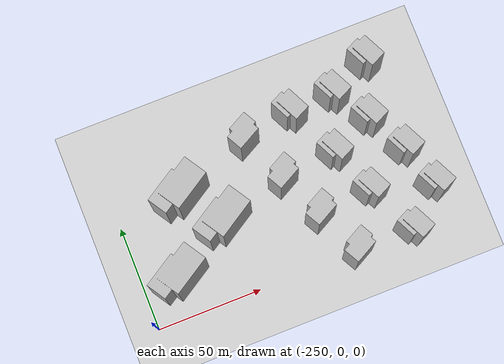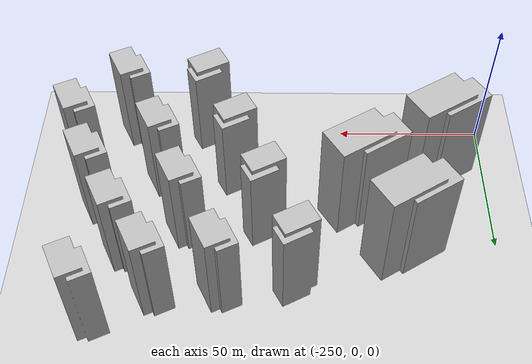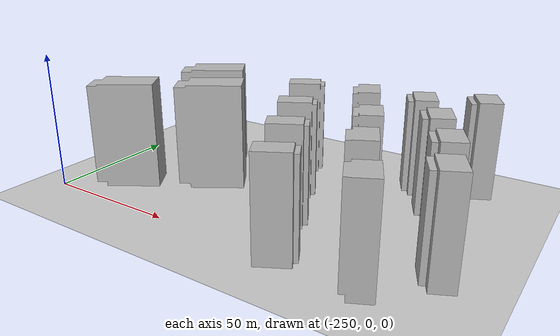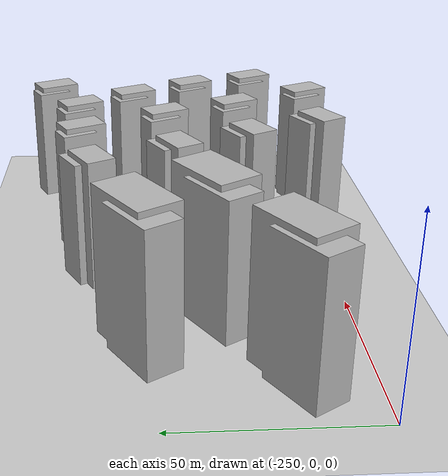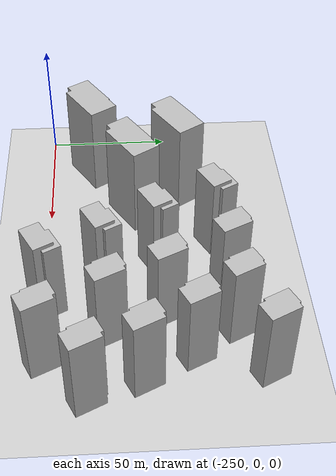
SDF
<sdf version="1.7">
 <world name="default">
  <model name="ground_plane">
   <static>1</static>
   <link name="link">
    <collision name="collision">
     <geometry><plane><normal>0 0 1</normal><size>100 100</size></plane></geometry>
     <surface><friction><ode><mu>100</mu><mu2>50</mu2></ode></friction></surface>
    </collision>
    <visual name="visual">
     <cast_shadows>0</cast_shadows>
     <geometry><plane><normal>0 0 1</normal><size>100 100</size></plane></geometry>
     <material>
      <script><uri>file://media/materials/scripts/gazebo.material</uri><name>Gazebo/Grey</name></script>
     </material>
    </visual>
   </link>
  </model>
  <model name="apartment1_1_clone_clone_1">
   <static>1</static>
   <link name="link_0">
    <inertial>
     <mass>1</mass>
     <inertia>
      <ixx>0.166667</ixx>
      <ixy>0</ixy>
      <ixz>0</ixz>
      <iyy>0.166667</iyy>
      <iyz>0</iyz>
      <izz>0.166667</izz>
     </inertia>
    </inertial>
    <pose>1e-06 -0 0 0 -0 0</pose>
    <visual name="visual">
     <geometry>
      <mesh><uri>model://apartment1/scripts/apartment1.dae</uri><scale>0.2 0.2 0.3</scale></mesh>
     </geometry>
     <material>
      <lighting>1</lighting>
      <script><uri>model://apartment1/scripts/apartment1.jpg</uri><name>__default__</name></script>
      <shader type="pixel"/>
     </material>
    </visual>
    <collision name="collision">
     <geometry>
      <mesh><uri>model://apartment1/scripts/apartment1.dae</uri><scale>0.2 0.2 0.3</scale></mesh>
     </geometry>
     <surface>
      <friction>
       <ode><mu>1</mu><mu2>1</mu2><fdir1>0 0 0</fdir1><slip1>0</slip1><slip2>0</slip2></ode>
       <torsional>
        <coefficient>1</coefficient>
        <patch_radius>0</patch_radius>
        <surface_radius>0</surface_radius>
        <use_patch_radius>1</use_patch_radius>
        <ode><slip>0</slip></ode>
       </torsional>
      </friction>
      <bounce><restitution_coefficient>0</restitution_coefficient><threshold>1e+06</threshold></bounce>
      <contact>
       <collide_without_contact>0</collide_without_contact>
       <collide_without_contact_bitmask>1</collide_without_contact_bitmask>
       <collide_bitmask>1</collide_bitmask>
       <ode>
        <soft_cfm>0</soft_cfm>
        <soft_erp>0.2</soft_erp>
        <kp>1e+13</kp>
        <kd>1</kd>
        <max_vel>0.01</max_vel>
        <min_depth>0</min_depth>
       </ode>
       <bullet>
        <split_impulse>1</split_impulse>
        <split_impulse_penetration_threshold>-0.01</split_impulse_penetration_threshold>
        <soft_cfm>0</soft_cfm>
        <soft_erp>0.2</soft_erp>
        <kp>1e+13</kp>
        <kd>1</kd>
       </bullet>
      </contact>
     </surface>
    </collision>
   </link>
   <static>0</static>
   <pose>-116.398 79.7343 0 0 -0 0.45325</pose>
  </model>
  <model name="apartment1_1_clone_clone_2_clone_0">
   <static>1</static>
   <link name="link_0">
    <inertial>
     <mass>1</mass>
     <inertia>
      <ixx>0.166667</ixx>
      <ixy>0</ixy>
      <ixz>0</ixz>
      <iyy>0.166667</iyy>
      <iyz>0</iyz>
      <izz>0.166667</izz>
     </inertia>
    </inertial>
    <pose>1e-06 -0 0 0 -0 0</pose>
    <visual name="visual">
     <geometry>
      <mesh><uri>model://apartment1/scripts/apartment1.dae</uri><scale>0.2 0.2 0.3</scale></mesh>
     </geometry>
     <material>
      <lighting>1</lighting>
      <script><uri>model://apartment1/scripts/apartment1.jpg</uri><name>__default__</name></script>
      <shader type="pixel"/>
     </material>
    </visual>
    <collision name="collision">
     <geometry>
      <mesh><uri>model://apartment1/scripts/apartment1.dae</uri><scale>0.2 0.2 0.3</scale></mesh>
     </geometry>
     <surface>
      <friction>
       <ode><mu>1</mu><mu2>1</mu2><fdir1>0 0 0</fdir1><slip1>0</slip1><slip2>0</slip2></ode>
       <torsional>
        <coefficient>1</coefficient>
        <patch_radius>0</patch_radius>
        <surface_radius>0</surface_radius>
        <use_patch_radius>1</use_patch_radius>
        <ode><slip>0</slip></ode>
       </torsional>
      </friction>
      <bounce><restitution_coefficient>0</restitution_coefficient><threshold>1e+06</threshold></bounce>
      <contact>
       <collide_without_contact>0</collide_without_contact>
       <collide_without_contact_bitmask>1</collide_without_contact_bitmask>
       <collide_bitmask>1</collide_bitmask>
       <ode>
        <soft_cfm>0</soft_cfm>
        <soft_erp>0.2</soft_erp>
        <kp>1e+13</kp>
        <kd>1</kd>
        <max_vel>0.01</max_vel>
        <min_depth>0</min_depth>
       </ode>
       <bullet>
        <split_impulse>1</split_impulse>
        <split_impulse_penetration_threshold>-0.01</split_impulse_penetration_threshold>
        <soft_cfm>0</soft_cfm>
        <soft_erp>0.2</soft_erp>
        <kp>1e+13</kp>
        <kd>1</kd>
       </bullet>
      </contact>
     </surface>
    </collision>
   </link>
   <static>0</static>
   <pose>-135.947 70.6556 0 0 -0 0.45325</pose>
  </model>
  <model name="apartment1_1_clone_clone_2_clone_1">
   <static>1</static>
   <link name="link_0">
    <inertial>
     <mass>1</mass>
     <inertia>
      <ixx>0.166667</ixx>
      <ixy>0</ixy>
      <ixz>0</ixz>
      <iyy>0.166667</iyy>
      <iyz>0</iyz>
      <izz>0.166667</izz>
     </inertia>
    </inertial>
    <pose>1e-06 -0 0 0 -0 0</pose>
    <visual name="visual">
     <geometry>
      <mesh><uri>model://apartment1/scripts/apartment1.dae</uri><scale>0.2 0.2 0.3</scale></mesh>
     </geometry>
     <material>
      <lighting>1</lighting>
      <script><uri>model://apartment1/scripts/apartment1.jpg</uri><name>__default__</name></script>
      <shader type="pixel"/>
     </material>
    </visual>
    <collision name="collision">
     <geometry>
      <mesh><uri>model://apartment1/scripts/apartment1.dae</uri><scale>0.2 0.2 0.3</scale></mesh>
     </geometry>
     <surface>
      <friction>
       <ode><mu>1</mu><mu2>1</mu2><fdir1>0 0 0</fdir1><slip1>0</slip1><slip2>0</slip2></ode>
       <torsional>
        <coefficient>1</coefficient>
        <patch_radius>0</patch_radius>
        <surface_radius>0</surface_radius>
        <use_patch_radius>1</use_patch_radius>
        <ode><slip>0</slip></ode>
       </torsional>
      </friction>
      <bounce><restitution_coefficient>0</restitution_coefficient><threshold>1e+06</threshold></bounce>
      <contact>
       <collide_without_contact>0</collide_without_contact>
       <collide_without_contact_bitmask>1</collide_without_contact_bitmask>
       <collide_bitmask>1</collide_bitmask>
       <ode>
        <soft_cfm>0</soft_cfm>
        <soft_erp>0.2</soft_erp>
        <kp>1e+13</kp>
        <kd>1</kd>
        <max_vel>0.01</max_vel>
        <min_depth>0</min_depth>
       </ode>
       <bullet>
        <split_impulse>1</split_impulse>
        <split_impulse_penetration_threshold>-0.01</split_impulse_penetration_threshold>
        <soft_cfm>0</soft_cfm>
        <soft_erp>0.2</soft_erp>
        <kp>1e+13</kp>
        <kd>1</kd>
       </bullet>
      </contact>
     </surface>
    </collision>
   </link>
   <static>0</static>
   <pose>-124.596 54.3722 0 0 -0 0.45325</pose>
  </model>
  <model name="apartment1_1_clone_clone_2_clone_2">
   <static>1</static>
   <link name="link_0">
    <inertial>
     <mass>1</mass>
     <inertia>
      <ixx>0.166667</ixx>
      <ixy>0</ixy>
      <ixz>0</ixz>
      <iyy>0.166667</iyy>
      <iyz>0</iyz>
      <izz>0.166667</izz>
     </inertia>
    </inertial>
    <pose>1e-06 -0 0 0 -0 0</pose>
    <visual name="visual">
     <geometry>
      <mesh><uri>model://apartment1/scripts/apartment1.dae</uri><scale>0.2 0.2 0.3</scale></mesh>
     </geometry>
     <material>
      <lighting>1</lighting>
      <script><uri>model://apartment1/scripts/apartment1.jpg</uri><name>__default__</name></script>
      <shader type="pixel"/>
     </material>
    </visual>
    <collision name="collision">
     <geometry>
      <mesh><uri>model://apartment1/scripts/apartment1.dae</uri><scale>0.2 0.2 0.3</scale></mesh>
     </geometry>
     <surface>
      <friction>
       <ode><mu>1</mu><mu2>1</mu2><fdir1>0 0 0</fdir1><slip1>0</slip1><slip2>0</slip2></ode>
       <torsional>
        <coefficient>1</coefficient>
        <patch_radius>0</patch_radius>
        <surface_radius>0</surface_radius>
        <use_patch_radius>1</use_patch_radius>
        <ode><slip>0</slip></ode>
       </torsional>
      </friction>
      <bounce><restitution_coefficient>0</restitution_coefficient><threshold>1e+06</threshold></bounce>
      <contact>
       <collide_without_contact>0</collide_without_contact>
       <collide_without_contact_bitmask>1</collide_without_contact_bitmask>
       <collide_bitmask>1</collide_bitmask>
       <ode>
        <soft_cfm>0</soft_cfm>
        <soft_erp>0.2</soft_erp>
        <kp>1e+13</kp>
        <kd>1</kd>
        <max_vel>0.01</max_vel>
        <min_depth>0</min_depth>
       </ode>
       <bullet>
        <split_impulse>1</split_impulse>
        <split_impulse_penetration_threshold>-0.01</split_impulse_penetration_threshold>
        <soft_cfm>0</soft_cfm>
        <soft_erp>0.2</soft_erp>
        <kp>1e+13</kp>
        <kd>1</kd>
       </bullet>
      </contact>
     </surface>
    </collision>
   </link>
   <static>0</static>
   <pose>-114.687 35.4217 0 0 -0 0.45325</pose>
  </model>
  <model name="apartment1_1_clone_clone_2_clone_3">
   <static>1</static>
   <link name="link_0">
    <inertial>
     <mass>1</mass>
     <inertia>
      <ixx>0.166667</ixx>
      <ixy>0</ixy>
      <ixz>0</ixz>
      <iyy>0.166667</iyy>
      <iyz>0</iyz>
      <izz>0.166667</izz>
     </inertia>
    </inertial>
    <pose>1e-06 -0 0 0 -0 0</pose>
    <visual name="visual">
     <geometry>
      <mesh><uri>model://apartment1/scripts/apartment1.dae</uri><scale>0.2 0.2 0.3</scale></mesh>
     </geometry>
     <material>
      <lighting>1</lighting>
      <script><uri>model://apartment1/scripts/apartment1.jpg</uri><name>__default__</name></script>
      <shader type="pixel"/>
     </material>
    </visual>
    <collision name="collision">
     <geometry>
      <mesh><uri>model://apartment1/scripts/apartment1.dae</uri><scale>0.2 0.2 0.3</scale></mesh>
     </geometry>
     <surface>
      <friction>
       <ode><mu>1</mu><mu2>1</mu2><fdir1>0 0 0</fdir1><slip1>0</slip1><slip2>0</slip2></ode>
       <torsional>
        <coefficient>1</coefficient>
        <patch_radius>0</patch_radius>
        <surface_radius>0</surface_radius>
        <use_patch_radius>1</use_patch_radius>
        <ode><slip>0</slip></ode>
       </torsional>
      </friction>
      <bounce><restitution_coefficient>0</restitution_coefficient><threshold>1e+06</threshold></bounce>
      <contact>
       <collide_without_contact>0</collide_without_contact>
       <collide_without_contact_bitmask>1</collide_without_contact_bitmask>
       <collide_bitmask>1</collide_bitmask>
       <ode>
        <soft_cfm>0</soft_cfm>
        <soft_erp>0.2</soft_erp>
        <kp>1e+13</kp>
        <kd>1</kd>
        <max_vel>0.01</max_vel>
        <min_depth>0</min_depth>
       </ode>
       <bullet>
        <split_impulse>1</split_impulse>
        <split_impulse_penetration_threshold>-0.01</split_impulse_penetration_threshold>
        <soft_cfm>0</soft_cfm>
        <soft_erp>0.2</soft_erp>
        <kp>1e+13</kp>
        <kd>1</kd>
       </bullet>
      </contact>
     </surface>
    </collision>
   </link>
   <static>0</static>
   <pose>-107.952 15.2635 0 0 -0 0.45325</pose>
  </model>
  <model name="apartment1_1_clone_clone_2_clone_5_clone">
   <static>1</static>
   <link name="link_0">
    <inertial>
     <mass>1</mass>
     <inertia>
      <ixx>0.166667</ixx>
      <ixy>0</ixy>
      <ixz>0</ixz>
      <iyy>0.166667</iyy>
      <iyz>0</iyz>
      <izz>0.166667</izz>
     </inertia>
    </inertial>
    <pose>1e-06 -0 0 0 -0 0</pose>
    <visual name="visual">
     <geometry>
      <mesh><uri>model://apartment1/scripts/apartment1.dae</uri><scale>0.2 0.2 0.3</scale></mesh>
     </geometry>
     <material>
      <lighting>1</lighting>
      <script><uri>model://apartment1/scripts/apartment1.jpg</uri><name>__default__</name></script>
      <shader type="pixel"/>
     </material>
    </visual>
    <collision name="collision">
     <geometry>
      <mesh><uri>model://apartment1/scripts/apartment1.dae</uri><scale>0.2 0.2 0.3</scale></mesh>
     </geometry>
     <surface>
      <friction>
       <ode><mu>1</mu><mu2>1</mu2><fdir1>0 0 0</fdir1><slip1>0</slip1><slip2>0</slip2></ode>
       <torsional>
        <coefficient>1</coefficient>
        <patch_radius>0</patch_radius>
        <surface_radius>0</surface_radius>
        <use_patch_radius>1</use_patch_radius>
        <ode><slip>0</slip></ode>
       </torsional>
      </friction>
      <bounce><restitution_coefficient>0</restitution_coefficient><threshold>1e+06</threshold></bounce>
      <contact>
       <collide_without_contact>0</collide_without_contact>
       <collide_without_contact_bitmask>1</collide_without_contact_bitmask>
       <collide_bitmask>1</collide_bitmask>
       <ode>
        <soft_cfm>0</soft_cfm>
        <soft_erp>0.2</soft_erp>
        <kp>1e+13</kp>
        <kd>1</kd>
        <max_vel>0.01</max_vel>
        <min_depth>0</min_depth>
       </ode>
       <bullet>
        <split_impulse>1</split_impulse>
        <split_impulse_penetration_threshold>-0.01</split_impulse_penetration_threshold>
        <soft_cfm>0</soft_cfm>
        <soft_erp>0.2</soft_erp>
        <kp>1e+13</kp>
        <kd>1</kd>
       </bullet>
      </contact>
     </surface>
    </collision>
   </link>
   <static>0</static>
   <pose>-124.5 -0.56408 0 0 -0 0.45325</pose>
  </model>
  <model name="apartment1_1_clone_clone_2_clone_5_clone_0">
   <static>1</static>
   <link name="link_0">
    <inertial>
     <mass>1</mass>
     <inertia>
      <ixx>0.166667</ixx>
      <ixy>0</ixy>
      <ixz>0</ixz>
      <iyy>0.166667</iyy>
      <iyz>0</iyz>
      <izz>0.166667</izz>
     </inertia>
    </inertial>
    <pose>1e-06 -0 0 0 -0 0</pose>
    <visual name="visual">
     <geometry>
      <mesh><uri>model://apartment1/scripts/apartment1.dae</uri><scale>0.2 0.2 0.3</scale></mesh>
     </geometry>
     <material>
      <lighting>1</lighting>
      <script><uri>model://apartment1/scripts/apartment1.jpg</uri><name>__default__</name></script>
      <shader type="pixel"/>
     </material>
    </visual>
    <collision name="collision">
     <geometry>
      <mesh><uri>model://apartment1/scripts/apartment1.dae</uri><scale>0.2 0.2 0.3</scale></mesh>
     </geometry>
     <surface>
      <friction>
       <ode><mu>1</mu><mu2>1</mu2><fdir1>0 0 0</fdir1><slip1>0</slip1><slip2>0</slip2></ode>
       <torsional>
        <coefficient>1</coefficient>
        <patch_radius>0</patch_radius>
        <surface_radius>0</surface_radius>
        <use_patch_radius>1</use_patch_radius>
        <ode><slip>0</slip></ode>
       </torsional>
      </friction>
      <bounce><restitution_coefficient>0</restitution_coefficient><threshold>1e+06</threshold></bounce>
      <contact>
       <collide_without_contact>0</collide_without_contact>
       <collide_without_contact_bitmask>1</collide_without_contact_bitmask>
       <collide_bitmask>1</collide_bitmask>
       <ode>
        <soft_cfm>0</soft_cfm>
        <soft_erp>0.2</soft_erp>
        <kp>1e+13</kp>
        <kd>1</kd>
        <max_vel>0.01</max_vel>
        <min_depth>0</min_depth>
       </ode>
       <bullet>
        <split_impulse>1</split_impulse>
        <split_impulse_penetration_threshold>-0.01</split_impulse_penetration_threshold>
        <soft_cfm>0</soft_cfm>
        <soft_erp>0.2</soft_erp>
        <kp>1e+13</kp>
        <kd>1</kd>
       </bullet>
      </contact>
     </surface>
    </collision>
   </link>
   <static>0</static>
   <pose>-136.242 23.1607 0 0 -0 0.45325</pose>
  </model>
  <model name="apartment1_1_clone_clone_2_clone_5_clone_1">
   <static>1</static>
   <link name="link_0">
    <inertial>
     <mass>1</mass>
     <inertia>
      <ixx>0.166667</ixx>
      <ixy>0</ixy>
      <ixz>0</ixz>
      <iyy>0.166667</iyy>
      <iyz>0</iyz>
      <izz>0.166667</izz>
     </inertia>
    </inertial>
    <pose>1e-06 -0 0 0 -0 0</pose>
    <visual name="visual">
     <geometry>
      <mesh><uri>model://apartment1/scripts/apartment1.dae</uri><scale>0.2 0.2 0.3</scale></mesh>
     </geometry>
     <material>
      <lighting>1</lighting>
      <script><uri>model://apartment1/scripts/apartment1.jpg</uri><name>__default__</name></script>
      <shader type="pixel"/>
     </material>
    </visual>
    <collision name="collision">
     <geometry>
      <mesh><uri>model://apartment1/scripts/apartment1.dae</uri><scale>0.2 0.2 0.3</scale></mesh>
     </geometry>
     <surface>
      <friction>
       <ode><mu>1</mu><mu2>1</mu2><fdir1>0 0 0</fdir1><slip1>0</slip1><slip2>0</slip2></ode>
       <torsional>
        <coefficient>1</coefficient>
        <patch_radius>0</patch_radius>
        <surface_radius>0</surface_radius>
        <use_patch_radius>1</use_patch_radius>
        <ode><slip>0</slip></ode>
       </torsional>
      </friction>
      <bounce><restitution_coefficient>0</restitution_coefficient><threshold>1e+06</threshold></bounce>
      <contact>
       <collide_without_contact>0</collide_without_contact>
       <collide_without_contact_bitmask>1</collide_without_contact_bitmask>
       <collide_bitmask>1</collide_bitmask>
       <ode>
        <soft_cfm>0</soft_cfm>
        <soft_erp>0.2</soft_erp>
        <kp>1e+13</kp>
        <kd>1</kd>
        <max_vel>0.01</max_vel>
        <min_depth>0</min_depth>
       </ode>
       <bullet>
        <split_impulse>1</split_impulse>
        <split_impulse_penetration_threshold>-0.01</split_impulse_penetration_threshold>
        <soft_cfm>0</soft_cfm>
        <soft_erp>0.2</soft_erp>
        <kp>1e+13</kp>
        <kd>1</kd>
       </bullet>
      </contact>
     </surface>
    </collision>
   </link>
   <static>0</static>
   <pose>-144.882 45.0306 0 0 -0 0.45325</pose>
  </model>
  <model name="apartment1_1_clone_clone_2_clone_5_clone_2">
   <static>1</static>
   <link name="link_0">
    <inertial>
     <mass>1</mass>
     <inertia>
      <ixx>0.166667</ixx>
      <ixy>0</ixy>
      <ixz>0</ixz>
      <iyy>0.166667</iyy>
      <iyz>0</iyz>
      <izz>0.166667</izz>
     </inertia>
    </inertial>
    <pose>1e-06 -0 0 0 -0 0</pose>
    <visual name="visual">
     <geometry>
      <mesh><uri>model://apartment1/scripts/apartment1.dae</uri><scale>0.2 0.2 0.3</scale></mesh>
     </geometry>
     <material>
      <lighting>1</lighting>
      <script><uri>model://apartment1/scripts/apartment1.jpg</uri><name>__default__</name></script>
      <shader type="pixel"/>
     </material>
    </visual>
    <collision name="collision">
     <geometry>
      <mesh><uri>model://apartment1/scripts/apartment1.dae</uri><scale>0.2 0.2 0.3</scale></mesh>
     </geometry>
     <surface>
      <friction>
       <ode><mu>1</mu><mu2>1</mu2><fdir1>0 0 0</fdir1><slip1>0</slip1><slip2>0</slip2></ode>
       <torsional>
        <coefficient>1</coefficient>
        <patch_radius>0</patch_radius>
        <surface_radius>0</surface_radius>
        <use_patch_radius>1</use_patch_radius>
        <ode><slip>0</slip></ode>
       </torsional>
      </friction>
      <bounce><restitution_coefficient>0</restitution_coefficient><threshold>1e+06</threshold></bounce>
      <contact>
       <collide_without_contact>0</collide_without_contact>
       <collide_without_contact_bitmask>1</collide_without_contact_bitmask>
       <collide_bitmask>1</collide_bitmask>
       <ode>
        <soft_cfm>0</soft_cfm>
        <soft_erp>0.2</soft_erp>
        <kp>1e+13</kp>
        <kd>1</kd>
        <max_vel>0.01</max_vel>
        <min_depth>0</min_depth>
       </ode>
       <bullet>
        <split_impulse>1</split_impulse>
        <split_impulse_penetration_threshold>-0.01</split_impulse_penetration_threshold>
        <soft_cfm>0</soft_cfm>
        <soft_erp>0.2</soft_erp>
        <kp>1e+13</kp>
        <kd>1</kd>
       </bullet>
      </contact>
     </surface>
    </collision>
   </link>
   <static>0</static>
   <pose>-157.168 69.3785 0 0 -0 0.45325</pose>
  </model>
  <model name="apartment1_1_clone_clone_2_clone_5_clone_4_clone_0">
   <static>1</static>
   <link name="link_0">
    <inertial>
     <mass>1</mass>
     <inertia>
      <ixx>0.166667</ixx>
      <ixy>0</ixy>
      <ixz>0</ixz>
      <iyy>0.166667</iyy>
      <iyz>0</iyz>
      <izz>0.166667</izz>
     </inertia>
    </inertial>
    <pose>1e-06 -0 0 0 -0 0</pose>
    <visual name="visual">
     <geometry>
      <mesh><uri>model://apartment1/scripts/apartment1.dae</uri><scale>0.2 0.2 0.3</scale></mesh>
     </geometry>
     <material>
      <lighting>1</lighting>
      <script><uri>model://apartment1/scripts/apartment1.jpg</uri><name>__default__</name></script>
      <shader type="pixel"/>
     </material>
    </visual>
    <collision name="collision">
     <geometry>
      <mesh><uri>model://apartment1/scripts/apartment1.dae</uri><scale>0.2 0.2 0.3</scale></mesh>
     </geometry>
     <surface>
      <friction>
       <ode><mu>1</mu><mu2>1</mu2><fdir1>0 0 0</fdir1><slip1>0</slip1><slip2>0</slip2></ode>
       <torsional>
        <coefficient>1</coefficient>
        <patch_radius>0</patch_radius>
        <surface_radius>0</surface_radius>
        <use_patch_radius>1</use_patch_radius>
        <ode><slip>0</slip></ode>
       </torsional>
      </friction>
      <bounce><restitution_coefficient>0</restitution_coefficient><threshold>1e+06</threshold></bounce>
      <contact>
       <collide_without_contact>0</collide_without_contact>
       <collide_without_contact_bitmask>1</collide_without_contact_bitmask>
       <collide_bitmask>1</collide_bitmask>
       <ode>
        <soft_cfm>0</soft_cfm>
        <soft_erp>0.2</soft_erp>
        <kp>1e+13</kp>
        <kd>1</kd>
        <max_vel>0.01</max_vel>
        <min_depth>0</min_depth>
       </ode>
       <bullet>
        <split_impulse>1</split_impulse>
        <split_impulse_penetration_threshold>-0.01</split_impulse_penetration_threshold>
        <soft_cfm>0</soft_cfm>
        <soft_erp>0.2</soft_erp>
        <kp>1e+13</kp>
        <kd>1</kd>
       </bullet>
      </contact>
     </surface>
    </collision>
   </link>
   <static>0</static>
   <pose>-152.753 -0.979251 0 0 0 -1.07862</pose>
  </model>
  <model name="apartment1_1_clone_clone_2_clone_5_clone_4_clone_1">
   <static>1</static>
   <link name="link_0">
    <inertial>
     <mass>1</mass>
     <inertia>
      <ixx>0.166667</ixx>
      <ixy>0</ixy>
      <ixz>0</ixz>
      <iyy>0.166667</iyy>
      <iyz>0</iyz>
      <izz>0.166667</izz>
     </inertia>
    </inertial>
    <pose>1e-06 -0 0 0 -0 0</pose>
    <visual name="visual">
     <geometry>
      <mesh><uri>model://apartment1/scripts/apartment1.dae</uri><scale>0.2 0.2 0.3</scale></mesh>
     </geometry>
     <material>
      <lighting>1</lighting>
      <script><uri>model://apartment1/scripts/apartment1.jpg</uri><name>__default__</name></script>
      <shader type="pixel"/>
     </material>
    </visual>
    <collision name="collision">
     <geometry>
      <mesh><uri>model://apartment1/scripts/apartment1.dae</uri><scale>0.2 0.2 0.3</scale></mesh>
     </geometry>
     <surface>
      <friction>
       <ode><mu>1</mu><mu2>1</mu2><fdir1>0 0 0</fdir1><slip1>0</slip1><slip2>0</slip2></ode>
       <torsional>
        <coefficient>1</coefficient>
        <patch_radius>0</patch_radius>
        <surface_radius>0</surface_radius>
        <use_patch_radius>1</use_patch_radius>
        <ode><slip>0</slip></ode>
       </torsional>
      </friction>
      <bounce><restitution_coefficient>0</restitution_coefficient><threshold>1e+06</threshold></bounce>
      <contact>
       <collide_without_contact>0</collide_without_contact>
       <collide_without_contact_bitmask>1</collide_without_contact_bitmask>
       <collide_bitmask>1</collide_bitmask>
       <ode>
        <soft_cfm>0</soft_cfm>
        <soft_erp>0.2</soft_erp>
        <kp>1e+13</kp>
        <kd>1</kd>
        <max_vel>0.01</max_vel>
        <min_depth>0</min_depth>
       </ode>
       <bullet>
        <split_impulse>1</split_impulse>
        <split_impulse_penetration_threshold>-0.01</split_impulse_penetration_threshold>
        <soft_cfm>0</soft_cfm>
        <soft_erp>0.2</soft_erp>
        <kp>1e+13</kp>
        <kd>1</kd>
       </bullet>
      </contact>
     </surface>
    </collision>
   </link>
   <static>0</static>
   <pose>-162.751 20.6029 0 0 0 -1.07862</pose>
  </model>
  <model name="apartment1_1_clone_clone_2_clone_5_clone_4_clone_2">
   <static>1</static>
   <link name="link_0">
    <inertial>
     <mass>1</mass>
     <inertia>
      <ixx>0.166667</ixx>
      <ixy>0</ixy>
      <ixz>0</ixz>
      <iyy>0.166667</iyy>
      <iyz>0</iyz>
      <izz>0.166667</izz>
     </inertia>
    </inertial>
    <pose>1e-06 -0 0 0 -0 0</pose>
    <visual name="visual">
     <geometry>
      <mesh><uri>model://apartment1/scripts/apartment1.dae</uri><scale>0.2 0.2 0.3</scale></mesh>
     </geometry>
     <material>
      <lighting>1</lighting>
      <script><uri>model://apartment1/scripts/apartment1.jpg</uri><name>__default__</name></script>
      <shader type="pixel"/>
     </material>
    </visual>
    <collision name="collision">
     <geometry>
      <mesh><uri>model://apartment1/scripts/apartment1.dae</uri><scale>0.2 0.2 0.3</scale></mesh>
     </geometry>
     <surface>
      <friction>
       <ode><mu>1</mu><mu2>1</mu2><fdir1>0 0 0</fdir1><slip1>0</slip1><slip2>0</slip2></ode>
       <torsional>
        <coefficient>1</coefficient>
        <patch_radius>0</patch_radius>
        <surface_radius>0</surface_radius>
        <use_patch_radius>1</use_patch_radius>
        <ode><slip>0</slip></ode>
       </torsional>
      </friction>
      <bounce><restitution_coefficient>0</restitution_coefficient><threshold>1e+06</threshold></bounce>
      <contact>
       <collide_without_contact>0</collide_without_contact>
       <collide_without_contact_bitmask>1</collide_without_contact_bitmask>
       <collide_bitmask>1</collide_bitmask>
       <ode>
        <soft_cfm>0</soft_cfm>
        <soft_erp>0.2</soft_erp>
        <kp>1e+13</kp>
        <kd>1</kd>
        <max_vel>0.01</max_vel>
        <min_depth>0</min_depth>
       </ode>
       <bullet>
        <split_impulse>1</split_impulse>
        <split_impulse_penetration_threshold>-0.01</split_impulse_penetration_threshold>
        <soft_cfm>0</soft_cfm>
        <soft_erp>0.2</soft_erp>
        <kp>1e+13</kp>
        <kd>1</kd>
       </bullet>
      </contact>
     </surface>
    </collision>
   </link>
   <static>0</static>
   <pose>-172.456 41.9935 0 0 0 -1.07862</pose>
  </model>
  <model name="apartment1_1_clone_clone_2_clone_5_clone_4_clone_3">
   <static>1</static>
   <link name="link_0">
    <inertial>
     <mass>1</mass>
     <inertia>
      <ixx>0.166667</ixx>
      <ixy>0</ixy>
      <ixz>0</ixz>
      <iyy>0.166667</iyy>
      <iyz>0</iyz>
      <izz>0.166667</izz>
     </inertia>
    </inertial>
    <pose>1e-06 -0 0 0 -0 0</pose>
    <visual name="visual">
     <geometry>
      <mesh><uri>model://apartment1/scripts/apartment1.dae</uri><scale>0.2 0.2 0.3</scale></mesh>
     </geometry>
     <material>
      <lighting>1</lighting>
      <script><uri>model://apartment1/scripts/apartment1.jpg</uri><name>__default__</name></script>
      <shader type="pixel"/>
     </material>
    </visual>
    <collision name="collision">
     <geometry>
      <mesh><uri>model://apartment1/scripts/apartment1.dae</uri><scale>0.2 0.2 0.3</scale></mesh>
     </geometry>
     <surface>
      <friction>
       <ode><mu>1</mu><mu2>1</mu2><fdir1>0 0 0</fdir1><slip1>0</slip1><slip2>0</slip2></ode>
       <torsional>
        <coefficient>1</coefficient>
        <patch_radius>0</patch_radius>
        <surface_radius>0</surface_radius>
        <use_patch_radius>1</use_patch_radius>
        <ode><slip>0</slip></ode>
       </torsional>
      </friction>
      <bounce><restitution_coefficient>0</restitution_coefficient><threshold>1e+06</threshold></bounce>
      <contact>
       <collide_without_contact>0</collide_without_contact>
       <collide_without_contact_bitmask>1</collide_without_contact_bitmask>
       <collide_bitmask>1</collide_bitmask>
       <ode>
        <soft_cfm>0</soft_cfm>
        <soft_erp>0.2</soft_erp>
        <kp>1e+13</kp>
        <kd>1</kd>
        <max_vel>0.01</max_vel>
        <min_depth>0</min_depth>
       </ode>
       <bullet>
        <split_impulse>1</split_impulse>
        <split_impulse_penetration_threshold>-0.01</split_impulse_penetration_threshold>
        <soft_cfm>0</soft_cfm>
        <soft_erp>0.2</soft_erp>
        <kp>1e+13</kp>
        <kd>1</kd>
       </bullet>
      </contact>
     </surface>
    </collision>
   </link>
   <static>0</static>
   <pose>-182.601 65.28 0 0 0 -1.07862</pose>
  </model>
  <model name="apartment1_4_clone_7">
   <static>1</static>
   <link name="link_0">
    <inertial>
     <mass>1</mass>
     <inertia>
      <ixx>0.166667</ixx>
      <ixy>0</ixy>
      <ixz>0</ixz>
      <iyy>0.166667</iyy>
      <iyz>0</iyz>
      <izz>0.166667</izz>
     </inertia>
    </inertial>
    <pose>1e-06 -0 0 0 -0 0</pose>
    <visual name="visual">
     <geometry>
      <mesh><uri>model://apartment1/scripts/apartment1.dae</uri><scale>0.5 0.2 0.33</scale></mesh>
     </geometry>
     <material>
      <lighting>1</lighting>
      <script><uri>model://apartment1/scripts/apartment1.jpg</uri><name>__default__</name></script>
      <shader type="pixel"/>
     </material>
    </visual>
    <collision name="collision">
     <geometry>
      <mesh><uri>model://apartment1/scripts/apartment1.dae</uri><scale>0.5 0.2 0.33</scale></mesh>
     </geometry>
     <surface>
      <friction>
       <ode><mu>1</mu><mu2>1</mu2><fdir1>0 0 0</fdir1><slip1>0</slip1><slip2>0</slip2></ode>
       <torsional>
        <coefficient>1</coefficient>
        <patch_radius>0</patch_radius>
        <surface_radius>0</surface_radius>
        <use_patch_radius>1</use_patch_radius>
        <ode><slip>0</slip></ode>
       </torsional>
      </friction>
      <bounce><restitution_coefficient>0</restitution_coefficient><threshold>1e+06</threshold></bounce>
      <contact>
       <collide_without_contact>0</collide_without_contact>
       <collide_without_contact_bitmask>1</collide_without_contact_bitmask>
       <collide_bitmask>1</collide_bitmask>
       <ode>
        <soft_cfm>0</soft_cfm>
        <soft_erp>0.2</soft_erp>
        <kp>1e+13</kp>
        <kd>1</kd>
        <max_vel>0.01</max_vel>
        <min_depth>0</min_depth>
       </ode>
       <bullet>
        <split_impulse>1</split_impulse>
        <split_impulse_penetration_threshold>-0.01</split_impulse_penetration_threshold>
        <soft_cfm>0</soft_cfm>
        <soft_erp>0.2</soft_erp>
        <kp>1e+13</kp>
        <kd>1</kd>
       </bullet>
      </contact>
     </surface>
    </collision>
   </link>
   <static>0</static>
   <pose>-229.861 18.4533 0 0 -0 0.56104</pose>
  </model>
  <model name="apartment1_4_clone_8">
   <static>1</static>
   <link name="link_0">
    <inertial>
     <mass>1</mass>
     <inertia>
      <ixx>0.166667</ixx>
      <ixy>0</ixy>
      <ixz>0</ixz>
      <iyy>0.166667</iyy>
      <iyz>0</iyz>
      <izz>0.166667</izz>
     </inertia>
    </inertial>
    <pose>1e-06 -0 0 0 -0 0</pose>
    <visual name="visual">
     <geometry>
      <mesh><uri>model://apartment1/scripts/apartment1.dae</uri><scale>0.5 0.2 0.33</scale></mesh>
     </geometry>
     <material>
      <lighting>1</lighting>
      <script><uri>model://apartment1/scripts/apartment1.jpg</uri><name>__default__</name></script>
      <shader type="pixel"/>
     </material>
    </visual>
    <collision name="collision">
     <geometry>
      <mesh><uri>model://apartment1/scripts/apartment1.dae</uri><scale>0.5 0.2 0.33</scale></mesh>
     </geometry>
     <surface>
      <friction>
       <ode><mu>1</mu><mu2>1</mu2><fdir1>0 0 0</fdir1><slip1>0</slip1><slip2>0</slip2></ode>
       <torsional>
        <coefficient>1</coefficient>
        <patch_radius>0</patch_radius>
        <surface_radius>0</surface_radius>
        <use_patch_radius>1</use_patch_radius>
        <ode><slip>0</slip></ode>
       </torsional>
      </friction>
      <bounce><restitution_coefficient>0</restitution_coefficient><threshold>1e+06</threshold></bounce>
      <contact>
       <collide_without_contact>0</collide_without_contact>
       <collide_without_contact_bitmask>1</collide_without_contact_bitmask>
       <collide_bitmask>1</collide_bitmask>
       <ode>
        <soft_cfm>0</soft_cfm>
        <soft_erp>0.2</soft_erp>
        <kp>1e+13</kp>
        <kd>1</kd>
        <max_vel>0.01</max_vel>
        <min_depth>0</min_depth>
       </ode>
       <bullet>
        <split_impulse>1</split_impulse>
        <split_impulse_penetration_threshold>-0.01</split_impulse_penetration_threshold>
        <soft_cfm>0</soft_cfm>
        <soft_erp>0.2</soft_erp>
        <kp>1e+13</kp>
        <kd>1</kd>
       </bullet>
      </contact>
     </surface>
    </collision>
   </link>
   <static>0</static>
   <pose>-202.32 34.777 0 0 -0 0.56104</pose>
  </model>
  <model name="apartment1_4_clone_11">
   <static>1</static>
   <link name="link_0">
    <inertial>
     <mass>1</mass>
     <inertia>
      <ixx>0.166667</ixx>
      <ixy>0</ixy>
      <ixz>0</ixz>
      <iyy>0.166667</iyy>
      <iyz>0</iyz>
      <izz>0.166667</izz>
     </inertia>
    </inertial>
    <pose>1e-06 -0 0 0 -0 0</pose>
    <visual name="visual">
     <geometry>
      <mesh><uri>model://apartment1/scripts/apartment1.dae</uri><scale>0.5 0.2 0.33</scale></mesh>
     </geometry>
     <material>
      <lighting>1</lighting>
      <script><uri>model://apartment1/scripts/apartment1.jpg</uri><name>__default__</name></script>
      <shader type="pixel"/>
     </material>
    </visual>
    <collision name="collision">
     <geometry>
      <mesh><uri>model://apartment1/scripts/apartment1.dae</uri><scale>0.5 0.2 0.33</scale></mesh>
     </geometry>
     <surface>
      <friction>
       <ode><mu>1</mu><mu2>1</mu2><fdir1>0 0 0</fdir1><slip1>0</slip1><slip2>0</slip2></ode>
       <torsional>
        <coefficient>1</coefficient>
        <patch_radius>0</patch_radius>
        <surface_radius>0</surface_radius>
        <use_patch_radius>1</use_patch_radius>
        <ode><slip>0</slip></ode>
       </torsional>
      </friction>
      <bounce><restitution_coefficient>0</restitution_coefficient><threshold>1e+06</threshold></bounce>
      <contact>
       <collide_without_contact>0</collide_without_contact>
       <collide_without_contact_bitmask>1</collide_without_contact_bitmask>
       <collide_bitmask>1</collide_bitmask>
       <ode>
        <soft_cfm>0</soft_cfm>
        <soft_erp>0.2</soft_erp>
        <kp>1e+13</kp>
        <kd>1</kd>
        <max_vel>0.01</max_vel>
        <min_depth>0</min_depth>
       </ode>
       <bullet>
        <split_impulse>1</split_impulse>
        <split_impulse_penetration_threshold>-0.01</split_impulse_penetration_threshold>
        <soft_cfm>0</soft_cfm>
        <soft_erp>0.2</soft_erp>
        <kp>1e+13</kp>
        <kd>1</kd>
       </bullet>
      </contact>
     </surface>
    </collision>
   </link>
   <static>0</static>
   <pose>-216.008 53.7161 0 0 -0 0.56104</pose>
  </model>
 </world>
</sdf>
